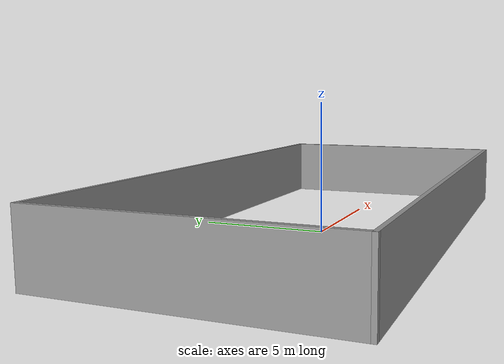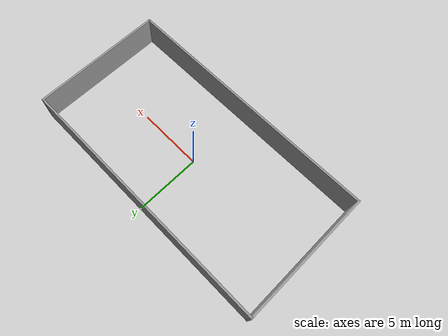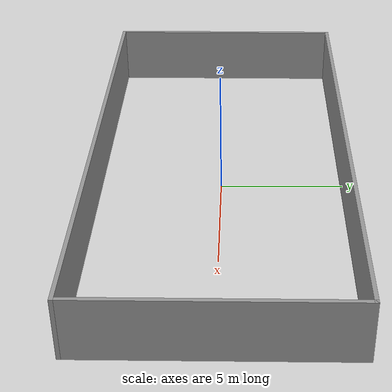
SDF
<?xml version='1.0'?>
<sdf version='1.7'>
  <model name='room'>
    <pose>0 0 0 0 -0 0</pose>
    <link name='Wall_29'>
      <collision name='Wall_29_Collision'>
        <geometry>
          <box>
            <size>10.15 0.15 2.5</size>
          </box>
        </geometry>
        <pose>0 0 1.25 0 -0 0</pose>
      </collision>
      <visual name='Wall_29_Visual'>
        <pose>0 0 1.25 0 -0 0</pose>
        <geometry>
          <box>
            <size>10.15 0.15 2.5</size>
          </box>
        </geometry>
        <material>
          <script>
            <uri>file://media/materials/scripts/gazebo.material</uri>
            <name>Gazebo/Grey</name>
          </script>
          <ambient>1 1 1 1</ambient>
        </material>
        <meta>
          <layer>0</layer>
        </meta>
      </visual>
      <pose>-10 0 0 0 -0 1.5708</pose>
    </link>
    <link name='Wall_30'>
      <collision name='Wall_30_Collision'>
        <geometry>
          <box>
            <size>20.15 0.15 2.5</size>
          </box>
        </geometry>
        <pose>0 0 1.25 0 -0 0</pose>
      </collision>
      <visual name='Wall_30_Visual'>
        <pose>0 0 1.25 0 -0 0</pose>
        <geometry>
          <box>
            <size>20.15 0.15 2.5</size>
          </box>
        </geometry>
        <material>
          <script>
            <uri>file://media/materials/scripts/gazebo.material</uri>
            <name>Gazebo/Grey</name>
          </script>
          <ambient>1 1 1 1</ambient>
        </material>
        <meta>
          <layer>0</layer>
        </meta>
      </visual>
      <pose>0 5 0 0 -0 0</pose>
    </link>
    <link name='Wall_31'>
      <collision name='Wall_31_Collision'>
        <geometry>
          <box>
            <size>10.15 0.15 2.5</size>
          </box>
        </geometry>
        <pose>0 0 1.25 0 -0 0</pose>
      </collision>
      <visual name='Wall_31_Visual'>
        <pose>0 0 1.25 0 -0 0</pose>
        <geometry>
          <box>
            <size>10.15 0.15 2.5</size>
          </box>
        </geometry>
        <material>
          <script>
            <uri>file://media/materials/scripts/gazebo.material</uri>
            <name>Gazebo/Grey</name>
          </script>
          <ambient>1 1 1 1</ambient>
        </material>
        <meta>
          <layer>0</layer>
        </meta>
      </visual>
      <pose>10 0 0 0 -0 -1.5708</pose>
    </link>
    <link name='Wall_32'>
      <collision name='Wall_32_Collision'>
        <geometry>
          <box>
            <size>20.15 0.15 2.5</size>
          </box>
        </geometry>
        <pose>0 0 1.25 0 -0 0</pose>
      </collision>
      <visual name='Wall_32_Visual'>
        <pose>0 0 1.25 0 -0 0</pose>
        <geometry>
          <box>
            <size>20.15 0.15 2.5</size>
          </box>
        </geometry>
        <material>
          <script>
            <uri>file://media/materials/scripts/gazebo.material</uri>
            <name>Gazebo/Grey</name>
          </script>
          <ambient>1 1 1 1</ambient>
        </material>
        <meta>
          <layer>0</layer>
        </meta>
      </visual>
      <pose>0 -5 0 0 -0 3.14159</pose>
    </link>
    <static>1</static>
  </model>
</sdf>
